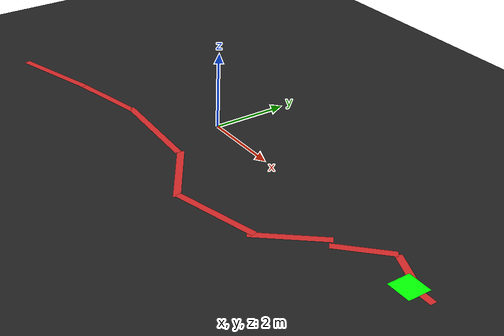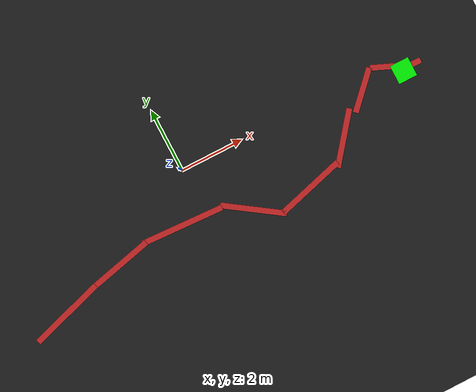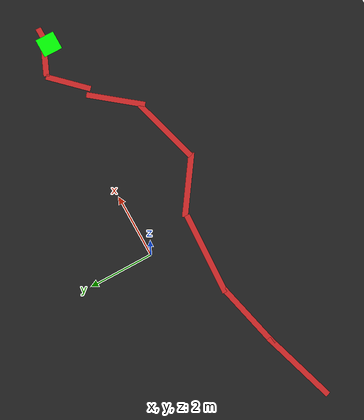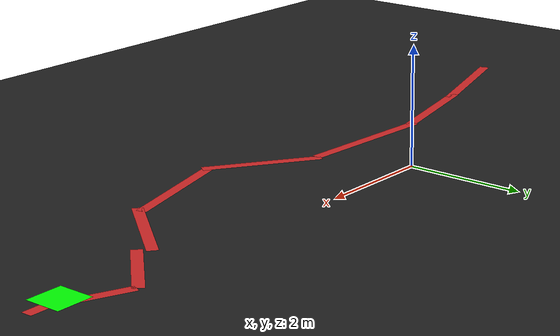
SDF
<?xml version="1.6" ?>
<sdf version="1.6">
  <world name="line_world">
    <gravity>0 0 -9.8</gravity>

    <include>
      <uri>model://sun</uri>
    </include>

    <!-- Flat dark floor -->
    <model name="floor_base">
      <static>true</static>
      <link name="floor_link">
        <collision name="floor_collision">
          <pose>0 0 0 0 0 0</pose>
          <geometry>
            <plane>
              <normal>0 0 1</normal>
              <size>20 20</size>
            </plane>
          </geometry>
        </collision>
        <visual name="floor_visual">
          <pose>0 0 0 0 0 0</pose>
          <geometry>
            <plane>
              <normal>0 0 1</normal>
              <size>20 20</size>
            </plane>
          </geometry>
          <material>
            <ambient>0.12 0.12 0.12 1</ambient>
            <diffuse>0.12 0.12 0.12 1</diffuse>
          </material>
        </visual>
      </link>
    </model>

    <!-- Continuous red path made of thin visual-only strips (flat, no bumps) -->
    <model name="red_path">
      <static>true</static>
      <link name="path_link">
        <visual name="seg0">
          <pose>-5.0 -2.2 0.0005 0 0 0.30</pose>
          <geometry>
            <plane>
              <normal>0 0 1</normal>
              <size>2.4 0.18</size>
            </plane>
          </geometry>
          <material>
            <script>
              <uri>file://media/materials/scripts/gazebo.material</uri>
              <name>Gazebo/Red</name>
            </script>
            <ambient>0.9 0 0 1</ambient>
            <diffuse>0.9 0 0 1</diffuse>
          </material>
        </visual>
        <visual name="seg1">
          <pose>-3.0 -1.65 0.0005 0 0 0.23</pose>
          <geometry>
            <plane>
              <normal>0 0 1</normal>
              <size>2.2 0.18</size>
            </plane>
          </geometry>
          <material>
            <script>
              <uri>file://media/materials/scripts/gazebo.material</uri>
              <name>Gazebo/Red</name>
            </script>
            <ambient>0.9 0 0 1</ambient>
            <diffuse>0.9 0 0 1</diffuse>
          </material>
        </visual>
        <visual name="seg2">
          <pose>-0.75 -1.45 0.0005 0 0 -0.05</pose>
          <geometry>
            <plane>
              <normal>0 0 1</normal>
              <size>2.6 0.18</size>
            </plane>
          </geometry>
          <material>
            <script>
              <uri>file://media/materials/scripts/gazebo.material</uri>
              <name>Gazebo/Red</name>
            </script>
            <ambient>0.9 0 0 1</ambient>
            <diffuse>0.9 0 0 1</diffuse>
          </material>
        </visual>
        <visual name="seg3">
          <pose>1.35 -2.0 0.0005 0 0 -0.60</pose>
          <geometry>
            <plane>
              <normal>0 0 1</normal>
              <size>2.0 0.18</size>
            </plane>
          </geometry>
          <material>
            <script>
              <uri>file://media/materials/scripts/gazebo.material</uri>
              <name>Gazebo/Red</name>
            </script>
            <ambient>0.9 0 0 1</ambient>
            <diffuse>0.9 0 0 1</diffuse>
          </material>
        </visual>
        <visual name="seg4">
          <pose>3.15 -2.2 0.0005 0 0 0.27</pose>
          <geometry>
            <plane>
              <normal>0 0 1</normal>
              <size>2.2 0.18</size>
            </plane>
          </geometry>
          <material>
            <script>
              <uri>file://media/materials/scripts/gazebo.material</uri>
              <name>Gazebo/Red</name>
            </script>
            <ambient>0.9 0 0 1</ambient>
            <diffuse>0.9 0 0 1</diffuse>
          </material>
        </visual>
        <visual name="seg5">
          <pose>4.7 -1.35 0.0005 0 0 0.90</pose>
          <geometry>
            <plane>
              <normal>0 0 1</normal>
              <size>1.8 0.18</size>
            </plane>
          </geometry>
          <material>
            <script>
              <uri>file://media/materials/scripts/gazebo.material</uri>
              <name>Gazebo/Red</name>
            </script>
            <ambient>0.9 0 0 1</ambient>
            <diffuse>0.9 0 0 1</diffuse>
          </material>
        </visual>
        <visual name="seg6">
          <pose>5.85 -0.35 0.0005 0 0 0.80</pose>
          <geometry>
            <plane>
              <normal>0 0 1</normal>
              <size>1.4 0.18</size>
            </plane>
          </geometry>
          <material>
            <script>
              <uri>file://media/materials/scripts/gazebo.material</uri>
              <name>Gazebo/Red</name>
            </script>
            <ambient>0.9 0 0 1</ambient>
            <diffuse>0.9 0 0 1</diffuse>
          </material>
        </visual>
        <visual name="seg7">
          <pose>6.9 -0.1 0.0005 0 0 -0.40</pose>
          <geometry>
            <plane>
              <normal>0 0 1</normal>
              <size>1.2 0.18</size>
            </plane>
          </geometry>
          <material>
            <script>
              <uri>file://media/materials/scripts/gazebo.material</uri>
              <name>Gazebo/Red</name>
            </script>
            <ambient>0.9 0 0 1</ambient>
            <diffuse>0.9 0 0 1</diffuse>
          </material>
        </visual>
        <visual name="seg8_goal">
          <pose>7.4 -0.35 0.0005 0 0 0.00</pose>
          <geometry>
            <plane>
              <normal>0 0 1</normal>
              <size>0.8 0.18</size>
            </plane>
          </geometry>
          <material>
            <script>
              <uri>file://media/materials/scripts/gazebo.material</uri>
              <name>Gazebo/Red</name>
            </script>
            <ambient>0.9 0 0 1</ambient>
            <diffuse>0.9 0 0 1</diffuse>
          </material>
        </visual>
      </link>
    </model>

    <!-- Goal zone marker -->
    <model name="goal_zone">
      <static>true</static>
      <!-- Keep at ground level to avoid a step -->
      <pose>7.2 -0.4 0.0005 0 0 0</pose>
      <link name="goal_link">
        <collision name="goal_collision">
          <pose>0 0 0 0 0 0</pose>
          <geometry>
            <box>
              <size>0.6 0.6 0.001</size>
            </box>
          </geometry>
        </collision>
        <visual name="goal_visual">
          <pose>0 0 0.0005 0 0 0</pose>
          <geometry>
            <box>
              <size>0.6 0.6 0.001</size>
            </box>
          </geometry>
          <material>
            <ambient>0 1 0 1</ambient>
            <diffuse>0 1 0 1</diffuse>
          </material>
        </visual>
      </link>
    </model>

  </world>
</sdf>
